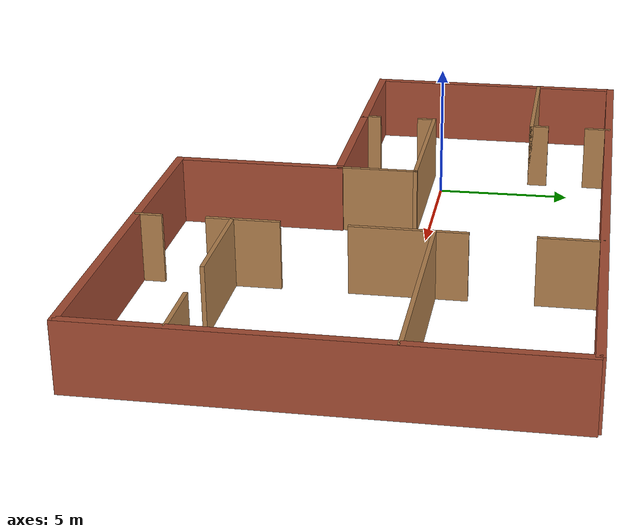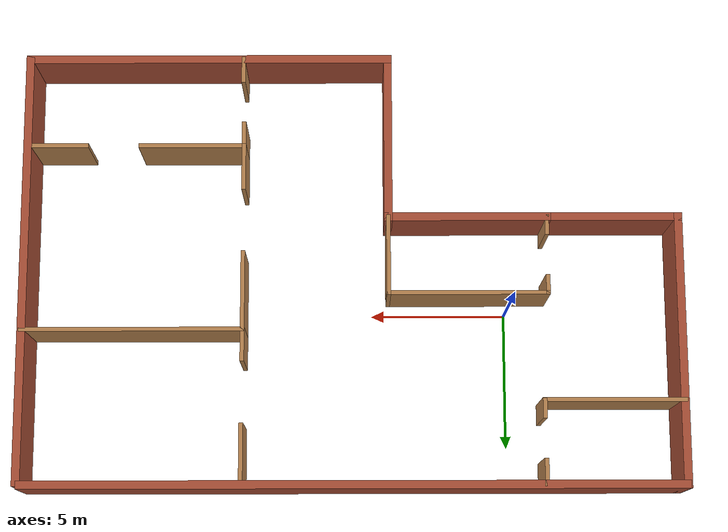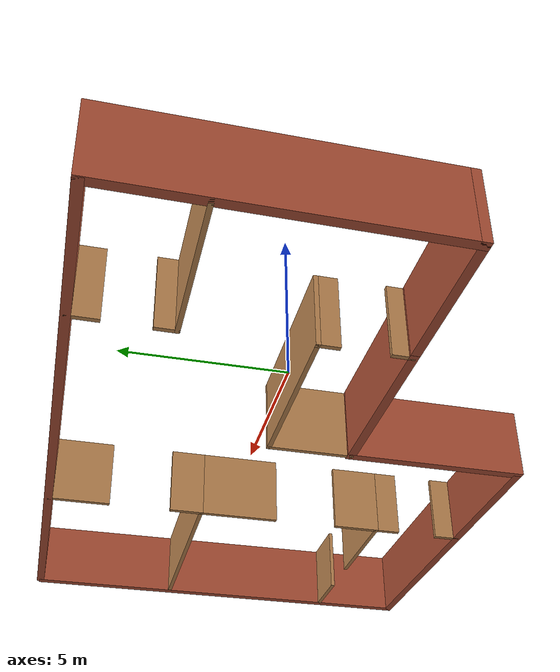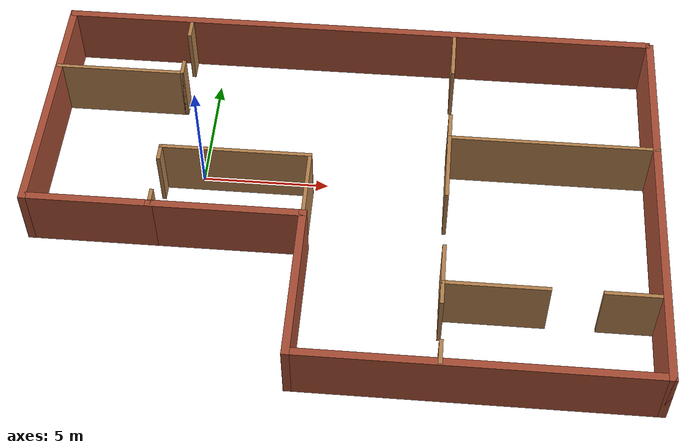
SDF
<?xml version='1.0'?>
<sdf version='1.6'>
  <model name='Building'>
    <pose frame=''>5.7555 -1.455 0 0 -0 0</pose>
    <link name='Wall_0'>
      <collision name='Wall_0_Collision'>
        <geometry>
          <box>
            <size>6.15 0.3 2.5</size>
          </box>
        </geometry>
        <pose frame=''>0 0 1.25 0 -0 0</pose>
      </collision>
      <visual name='Wall_0_Visual'>
        <pose frame=''>0 0 1.25 0 -0 0</pose>
        <geometry>
          <box>
            <size>6.15 0.3 2.5</size>
          </box>
        </geometry>
        <material>
          <script>
            <uri>file://media/materials/scripts/gazebo.material</uri>
            <name>Gazebo/Bricks</name>
          </script>
          <ambient>1 1 1 1</ambient>
        </material>
      </visual>
      <pose frame=''>-4.2905 -1.875 0 0 -0 0</pose>
    </link>
    <link name='Wall_1'>
      <collision name='Wall_1_Collision'>
        <geometry>
          <box>
            <size>3 0.15 2.5</size>
          </box>
        </geometry>
        <pose frame=''>0 0 1.25 0 -0 0</pose>
      </collision>
      <visual name='Wall_1_Visual'>
        <pose frame=''>0 0 1.25 0 -0 0</pose>
        <geometry>
          <box>
            <size>3 0.15 2.5</size>
          </box>
        </geometry>
        <material>
          <script>
            <uri>file://media/materials/scripts/gazebo.material</uri>
            <name>Gazebo/Wood</name>
          </script>
          <ambient>1 1 1 1</ambient>
        </material>
      </visual>
      <pose frame=''>-1.3655 -0.45 0 0 -0 1.5708</pose>
    </link>
    <link name='Wall_10'>
      <collision name='Wall_10_Collision'>
        <geometry>
          <box>
            <size>24.25 0.3 2.5</size>
          </box>
        </geometry>
        <pose frame=''>0 0 1.25 0 -0 0</pose>
      </collision>
      <visual name='Wall_10_Visual'>
        <pose frame=''>0 0 1.25 0 -0 0</pose>
        <geometry>
          <box>
            <size>24.25 0.3 2.5</size>
          </box>
        </geometry>
        <material>
          <script>
            <uri>file://media/materials/scripts/gazebo.material</uri>
            <name>Gazebo/Bricks</name>
          </script>
          <ambient>1 1 1 1</ambient>
        </material>
      </visual>
      <pose frame=''>-0.051365 7.975 0 0 -0 0</pose>
    </link>
    <link name='Wall_15'>
      <collision name='Wall_15_Collision'>
        <geometry>
          <box>
            <size>5.25 0.15 2.5</size>
          </box>
        </geometry>
        <pose frame=''>0 0 1.25 0 -0 0</pose>
      </collision>
      <visual name='Wall_15_Visual'>
        <pose frame=''>0 0 1.25 0 -0 0</pose>
        <geometry>
          <box>
            <size>5.25 0.15 2.5</size>
          </box>
        </geometry>
        <material>
          <script>
            <uri>file://media/materials/scripts/gazebo.material</uri>
            <name>Gazebo/Wood</name>
          </script>
          <ambient>1 1 1 1</ambient>
        </material>
      </visual>
      <pose frame=''>-9.54678 4.92232 0 0 -0 0</pose>
    </link>
    <link name='Wall_17'>
      <collision name='Wall_17_Collision'>
        <geometry>
          <box>
            <size>0.75 0.15 2.5</size>
          </box>
        </geometry>
        <pose frame=''>0 0 1.25 0 -0 0</pose>
      </collision>
      <visual name='Wall_17_Visual'>
        <pose frame=''>0 0 1.25 0 -0 0</pose>
        <geometry>
          <box>
            <size>0.75 0.15 2.5</size>
          </box>
        </geometry>
        <material>
          <script>
            <uri>file://media/materials/scripts/gazebo.material</uri>
            <name>Gazebo/Wood</name>
          </script>
          <ambient>1 1 1 1</ambient>
        </material>
      </visual>
      <pose frame=''>-6.99678 5.22232 0 0 -0 1.5708</pose>
    </link>
    <link name='Wall_2'>
      <collision name='Wall_2_Collision'>
        <geometry>
          <box>
            <size>6 0.15 2.5</size>
          </box>
        </geometry>
        <pose frame=''>0 0 1.25 0 -0 0</pose>
      </collision>
      <visual name='Wall_2_Visual'>
        <pose frame=''>0 0 1.25 0 -0 0</pose>
        <geometry>
          <box>
            <size>6 0.15 2.5</size>
          </box>
        </geometry>
        <material>
          <script>
            <uri>file://media/materials/scripts/gazebo.material</uri>
            <name>Gazebo/Wood</name>
          </script>
          <ambient>1 1 1 1</ambient>
        </material>
      </visual>
      <pose frame=''>-4.2905 0.975 0 0 -0 3.14159</pose>
    </link>
    <link name='Wall_20'>
      <collision name='Wall_20_Collision'>
        <geometry>
          <box>
            <size>1 0.15 2.5</size>
          </box>
        </geometry>
        <pose frame=''>0 0 1.25 0 -0 0</pose>
      </collision>
      <visual name='Wall_20_Visual'>
        <pose frame=''>0 0 1.25 0 -0 0</pose>
        <geometry>
          <box>
            <size>1 0.15 2.5</size>
          </box>
        </geometry>
        <material>
          <script>
            <uri>file://media/materials/scripts/gazebo.material</uri>
            <name>Gazebo/Wood</name>
          </script>
          <ambient>1 1 1 1</ambient>
        </material>
      </visual>
      <pose frame=''>-7.0138 7.53363 0 0 0 -1.5708</pose>
    </link>
    <link name='Wall_22'>
      <collision name='Wall_22_Collision'>
        <geometry>
          <box>
            <size>6.4 0.3 2.5</size>
          </box>
        </geometry>
        <pose frame=''>0 0 1.25 0 -0 0</pose>
      </collision>
      <visual name='Wall_22_Visual'>
        <pose frame=''>0 0 1.25 0 -0 0</pose>
        <geometry>
          <box>
            <size>6.4 0.3 2.5</size>
          </box>
        </geometry>
        <material>
          <script>
            <uri>file://media/materials/scripts/gazebo.material</uri>
            <name>Gazebo/Bricks</name>
          </script>
          <ambient>1 1 1 1</ambient>
        </material>
      </visual>
      <pose frame=''>-1.3655 -4.925 0 0 0 -1.5708</pose>
    </link>
    <link name='Wall_23'>
      <collision name='Wall_23_Collision'>
        <geometry>
          <box>
            <size>13.731 0.3 2.5</size>
          </box>
        </geometry>
        <pose frame=''>0 0 1.25 0 -0 0</pose>
      </collision>
      <visual name='Wall_23_Visual'>
        <pose frame=''>0 0 1.25 0 -0 0</pose>
        <geometry>
          <box>
            <size>13.731 0.3 2.5</size>
          </box>
        </geometry>
        <material>
          <script>
            <uri>file://media/materials/scripts/gazebo.material</uri>
            <name>Gazebo/Bricks</name>
          </script>
          <ambient>1 1 1 1</ambient>
        </material>
      </visual>
      <pose frame=''>5.35 -7.975 0 0 -0 0</pose>
    </link>
    <link name='Wall_24'>
      <collision name='Wall_24_Collision'>
        <geometry>
          <box>
            <size>16.15 0.3 2.5</size>
          </box>
        </geometry>
        <pose frame=''>0 0 1.25 0 -0 0</pose>
      </collision>
      <visual name='Wall_24_Visual'>
        <pose frame=''>0 0 1.25 0 -0 0</pose>
        <geometry>
          <box>
            <size>16.15 0.3 2.5</size>
          </box>
        </geometry>
        <material>
          <script>
            <uri>file://media/materials/scripts/gazebo.material</uri>
            <name>Gazebo/Bricks</name>
          </script>
          <ambient>1 1 1 1</ambient>
        </material>
      </visual>
      <pose frame=''>12.0655 -0.05 0 0 -0 1.5708</pose>
    </link>
    <link name='Wall_26'>
      <collision name='Wall_26_Collision'>
        <geometry>
          <box>
            <size>10.15 0.3 2.5</size>
          </box>
        </geometry>
        <pose frame=''>0 0 1.25 0 -0 0</pose>
      </collision>
      <visual name='Wall_26_Visual'>
        <pose frame=''>0 0 1.25 0 -0 0</pose>
        <geometry>
          <box>
            <size>10.15 0.3 2.5</size>
          </box>
        </geometry>
        <material>
          <script>
            <uri>file://media/materials/scripts/gazebo.material</uri>
            <name>Gazebo/Bricks</name>
          </script>
          <ambient>1 1 1 1</ambient>
        </material>
      </visual>
      <pose frame=''>-12.0655 3.05 0 0 -0 1.5708</pose>
    </link>
    <link name='Wall_29'>
      <collision name='Wall_29_Collision'>
        <geometry>
          <box>
            <size>2.25 0.15 2.5</size>
          </box>
        </geometry>
        <pose frame=''>0 0 1.25 0 -0 0</pose>
      </collision>
      <visual name='Wall_29_Visual'>
        <pose frame=''>0 0 1.25 0 -0 0</pose>
        <geometry>
          <box>
            <size>2.25 0.15 2.5</size>
          </box>
        </geometry>
        <material>
          <script>
            <uri>file://media/materials/scripts/gazebo.material</uri>
            <name>Gazebo/Wood</name>
          </script>
          <ambient>1 1 1 1</ambient>
        </material>
      </visual>
      <pose frame=''>4.00585 6.87362 0 0 0 -1.5708</pose>
    </link>
    <link name='Wall_3'>
      <collision name='Wall_3_Collision'>
        <geometry>
          <box>
            <size>0.75 0.15 2.5</size>
          </box>
        </geometry>
        <pose frame=''>0 0 1.25 0 -0 0</pose>
      </collision>
      <visual name='Wall_3_Visual'>
        <pose frame=''>0 0 1.25 0 -0 0</pose>
        <geometry>
          <box>
            <size>0.75 0.15 2.5</size>
          </box>
        </geometry>
        <material>
          <script>
            <uri>file://media/materials/scripts/gazebo.material</uri>
            <name>Gazebo/Wood</name>
          </script>
          <ambient>1 1 1 1</ambient>
        </material>
      </visual>
      <pose frame=''>-7.2155 0.675 0 0 0 -1.5708</pose>
    </link>
    <link name='Wall_34'>
      <collision name='Wall_34_Collision'>
        <geometry>
          <box>
            <size>1.25 0.15 2.5</size>
          </box>
        </geometry>
        <pose frame=''>0 0 1.25 0 -0 0</pose>
      </collision>
      <visual name='Wall_34_Visual'>
        <pose frame=''>0 0 1.25 0 -0 0</pose>
        <geometry>
          <box>
            <size>1.25 0.15 2.5</size>
          </box>
        </geometry>
        <material>
          <script>
            <uri>file://media/materials/scripts/gazebo.material</uri>
            <name>Gazebo/Wood</name>
          </script>
          <ambient>1 1 1 1</ambient>
        </material>
      </visual>
      <pose frame=''>3.99805 2.86928 0 0 0 -1.5708</pose>
    </link>
    <link name='Wall_35'>
      <collision name='Wall_35_Collision'>
        <geometry>
          <box>
            <size>8.25 0.15 2.5</size>
          </box>
        </geometry>
        <pose frame=''>0 0 1.25 0 -0 0</pose>
      </collision>
      <visual name='Wall_35_Visual'>
        <pose frame=''>0 0 1.25 0 -0 0</pose>
        <geometry>
          <box>
            <size>8.25 0.15 2.5</size>
          </box>
        </geometry>
        <material>
          <script>
            <uri>file://media/materials/scripts/gazebo.material</uri>
            <name>Gazebo/Wood</name>
          </script>
          <ambient>1 1 1 1</ambient>
        </material>
      </visual>
      <pose frame=''>8.04805 2.31928 0 0 -0 0</pose>
    </link>
    <link name='Wall_38'>
      <collision name='Wall_38_Collision'>
        <geometry>
          <box>
            <size>3 0.15 2.5</size>
          </box>
        </geometry>
        <pose frame=''>0 0 1.25 0 -0 0</pose>
      </collision>
      <visual name='Wall_38_Visual'>
        <pose frame=''>0 0 1.25 0 -0 0</pose>
        <geometry>
          <box>
            <size>3 0.15 2.5</size>
          </box>
        </geometry>
        <material>
          <script>
            <uri>file://media/materials/scripts/gazebo.material</uri>
            <name>Gazebo/Wood</name>
          </script>
          <ambient>1 1 1 1</ambient>
        </material>
      </visual>
      <pose frame=''>3.99805 0.894284 0 0 0 -1.5708</pose>
    </link>
    <link name='Wall_40'>
      <collision name='Wall_40_Collision'>
        <geometry>
          <box>
            <size>1.75 0.15 2.5</size>
          </box>
        </geometry>
        <pose frame=''>0 0 1.25 0 -0 0</pose>
      </collision>
      <visual name='Wall_40_Visual'>
        <pose frame=''>0 0 1.25 0 -0 0</pose>
        <geometry>
          <box>
            <size>1.75 0.15 2.5</size>
          </box>
        </geometry>
        <material>
          <script>
            <uri>file://media/materials/scripts/gazebo.material</uri>
            <name>Gazebo/Wood</name>
          </script>
          <ambient>1 1 1 1</ambient>
        </material>
      </visual>
      <pose frame=''>4.00066 -3.81284 0 0 0 -1.5708</pose>
    </link>
    <link name='Wall_44'>
      <collision name='Wall_44_Collision'>
        <geometry>
          <box>
            <size>1 0.15 2.5</size>
          </box>
        </geometry>
        <pose frame=''>0 0 1.25 0 -0 0</pose>
      </collision>
      <visual name='Wall_44_Visual'>
        <pose frame=''>0 0 1.25 0 -0 0</pose>
        <geometry>
          <box>
            <size>1 0.15 2.5</size>
          </box>
        </geometry>
        <material>
          <script>
            <uri>file://media/materials/scripts/gazebo.material</uri>
            <name>Gazebo/Wood</name>
          </script>
          <ambient>1 1 1 1</ambient>
        </material>
      </visual>
      <pose frame=''>4.00066 -5.03784 0 0 0 -1.5708</pose>
    </link>
    <link name='Wall_46'>
      <collision name='Wall_46_Collision'>
        <geometry>
          <box>
            <size>1 0.15 2.5</size>
          </box>
        </geometry>
        <pose frame=''>0 0 1.25 0 -0 0</pose>
      </collision>
      <visual name='Wall_46_Visual'>
        <pose frame=''>0 0 1.25 0 -0 0</pose>
        <geometry>
          <box>
            <size>1 0.15 2.5</size>
          </box>
        </geometry>
        <material>
          <script>
            <uri>file://media/materials/scripts/gazebo.material</uri>
            <name>Gazebo/Wood</name>
          </script>
          <ambient>1 1 1 1</ambient>
        </material>
      </visual>
      <pose frame=''>4.04354 -7.56511 0 0 -0 1.5708</pose>
    </link>
    <link name='Wall_48'>
      <collision name='Wall_48_Collision'>
        <geometry>
          <box>
            <size>4 0.15 2.5</size>
          </box>
        </geometry>
        <pose frame=''>0 0 1.25 0 -0 0</pose>
      </collision>
      <visual name='Wall_48_Visual'>
        <pose frame=''>0 0 1.25 0 -0 0</pose>
        <geometry>
          <box>
            <size>4 0.15 2.5</size>
          </box>
        </geometry>
        <material>
          <script>
            <uri>file://media/materials/scripts/gazebo.material</uri>
            <name>Gazebo/Wood</name>
          </script>
          <ambient>1 1 1 1</ambient>
        </material>
      </visual>
      <pose frame=''>5.92566 -4.61284 0 0 -0 0</pose>
    </link>
    <link name='Wall_5'>
      <collision name='Wall_5_Collision'>
        <geometry>
          <box>
            <size>0.75 0.15 2.5</size>
          </box>
        </geometry>
        <pose frame=''>0 0 1.25 0 -0 0</pose>
      </collision>
      <visual name='Wall_5_Visual'>
        <pose frame=''>0 0 1.25 0 -0 0</pose>
        <geometry>
          <box>
            <size>0.75 0.15 2.5</size>
          </box>
        </geometry>
        <material>
          <script>
            <uri>file://media/materials/scripts/gazebo.material</uri>
            <name>Gazebo/Wood</name>
          </script>
          <ambient>1 1 1 1</ambient>
        </material>
      </visual>
      <pose frame=''>-7.2155 -1.575 0 0 -0 1.5708</pose>
    </link>
    <link name='Wall_50'>
      <collision name='Wall_50_Collision'>
        <geometry>
          <box>
            <size>2.25 0.15 2.5</size>
          </box>
        </geometry>
        <pose frame=''>0 0 1.25 0 -0 0</pose>
      </collision>
      <visual name='Wall_50_Visual'>
        <pose frame=''>0 0 1.25 0 -0 0</pose>
        <geometry>
          <box>
            <size>2.25 0.15 2.5</size>
          </box>
        </geometry>
        <material>
          <script>
            <uri>file://media/materials/scripts/gazebo.material</uri>
            <name>Gazebo/Wood</name>
          </script>
          <ambient>1 1 1 1</ambient>
        </material>
      </visual>
      <pose frame=''>10.9177 -4.61728 0 0 -0 0</pose>
    </link>
    <link name='Wall_7'>
      <collision name='Wall_7_Collision'>
        <geometry>
          <box>
            <size>5.15 0.3 2.5</size>
          </box>
        </geometry>
        <pose frame=''>0 0 1.25 0 -0 0</pose>
      </collision>
      <visual name='Wall_7_Visual'>
        <pose frame=''>0 0 1.25 0 -0 0</pose>
        <geometry>
          <box>
            <size>5.15 0.3 2.5</size>
          </box>
        </geometry>
        <material>
          <script>
            <uri>file://media/materials/scripts/gazebo.material</uri>
            <name>Gazebo/Bricks</name>
          </script>
          <ambient>1 1 1 1</ambient>
        </material>
      </visual>
      <pose frame=''>-9.6405 -1.875 0 0 -0 3.14159</pose>
    </link>
    <static>1</static>
  </model>
</sdf>
